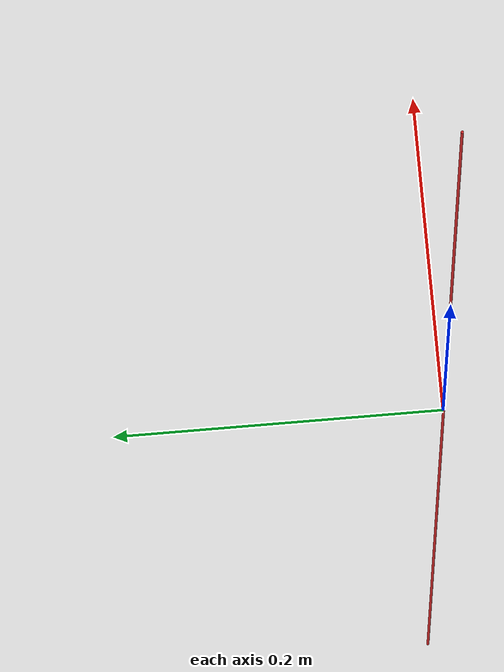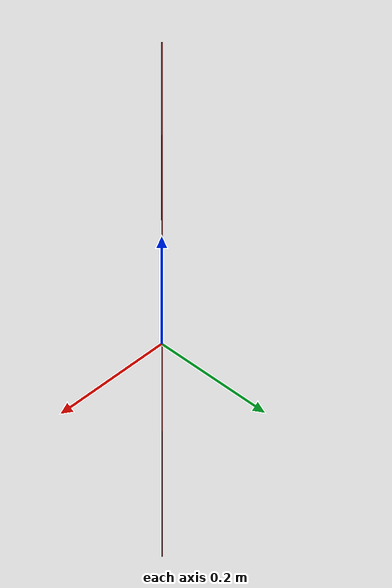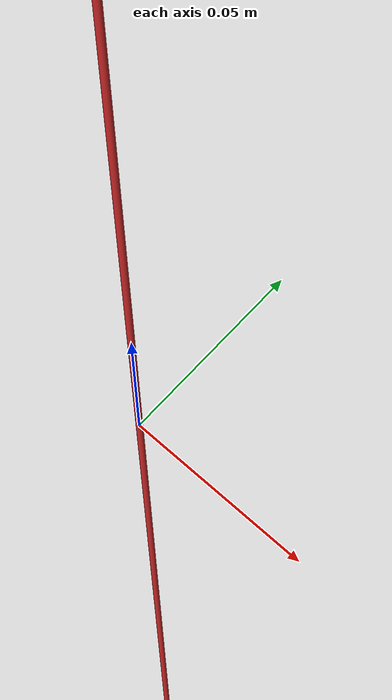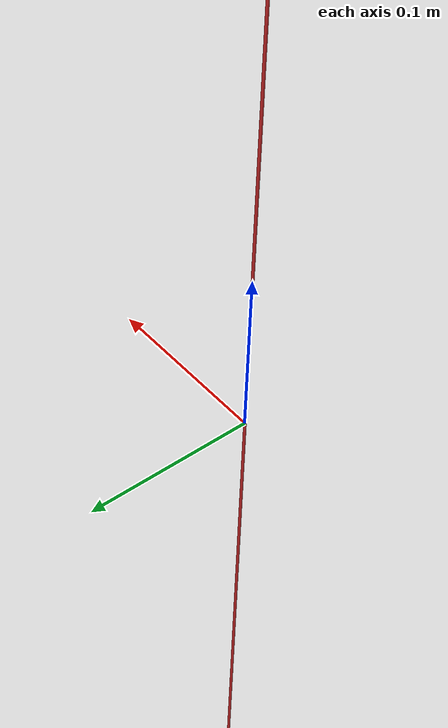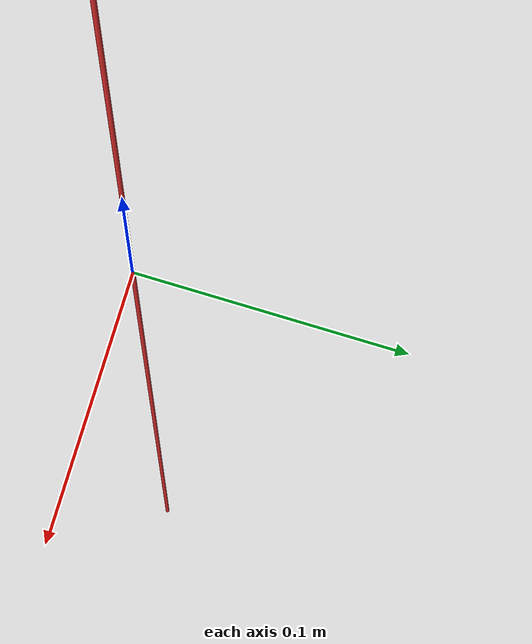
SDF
<?xml version='1.0'?>
<sdf version='1.6'>
  <model name='cylinder'>
    <static>true</static>
    <link name='link'>
      <pose frame=''>0 0 0 0 -0 0</pose>
      <self_collide>0</self_collide>
      <kinematic>0</kinematic>
      <visual name='visual'>
        <geometry>
          <cylinder>
            <radius>0.0008445</radius>
            <length>1</length>
          </cylinder>
        </geometry>
        <material>
          <script>
            <name>Gazebo/Red</name>
            <uri>file://media/materials/scripts/gazebo.material</uri>
          </script>
        </material>
        <pose frame=''>0 0 0 0 -0 0</pose>
        <cast_shadows>1</cast_shadows>
        <transparency>0</transparency>
      </visual>
      <collision name='collision'>
        <laser_retro>0</laser_retro>
        <max_contacts>10</max_contacts>
        <pose frame=''>0 0 0 0 -0 0</pose>
        <geometry>
          <cylinder>
            <radius>0.000845</radius>
            <length>1</length>
          </cylinder>
        </geometry>
        <surface>
          <friction>
            <ode>
              <mu>1</mu>
              <mu2>1</mu2>
              <fdir1>0 0 0</fdir1>
              <slip1>0</slip1>
              <slip2>0</slip2>
            </ode>
            <torsional>
              <coefficient>1</coefficient>
              <patch_radius>0</patch_radius>
              <surface_radius>0</surface_radius>
              <use_patch_radius>1</use_patch_radius>
              <ode>
                <slip>0</slip>
              </ode>
            </torsional>
          </friction>
          <bounce>
            <restitution_coefficient>0</restitution_coefficient>
            <threshold>1e+06</threshold>
          </bounce>
          <contact>
            <collide_without_contact>0</collide_without_contact>
            <collide_without_contact_bitmask>0</collide_without_contact_bitmask>
            <collide_bitmask>0</collide_bitmask>
            <ode>
              <soft_cfm>0</soft_cfm>
              <soft_erp>0.2</soft_erp>
              <kp>1e+13</kp>
              <kd>1</kd>
              <max_vel>0.01</max_vel>
              <min_depth>0</min_depth>
            </ode>
            <bullet>
              <split_impulse>1</split_impulse>
              <split_impulse_penetration_threshold>-0.01</split_impulse_penetration_threshold>
              <soft_cfm>0</soft_cfm>
              <soft_erp>0.2</soft_erp>
              <kp>1e+13</kp>
              <kd>1</kd>
            </bullet>
          </contact>
        </surface>
      </collision>
    </link>
    <static>0</static>
    <allow_auto_disable>1</allow_auto_disable>
  </model>
</sdf>
